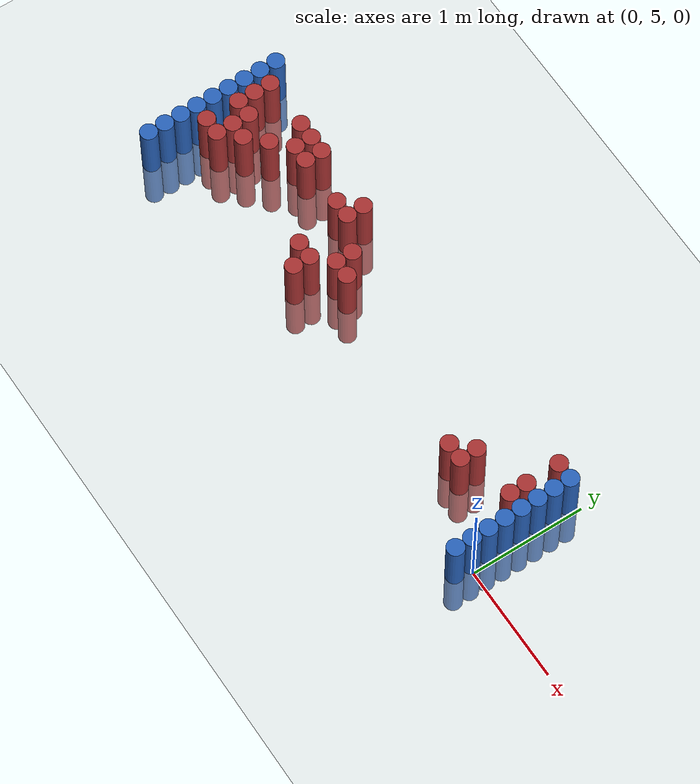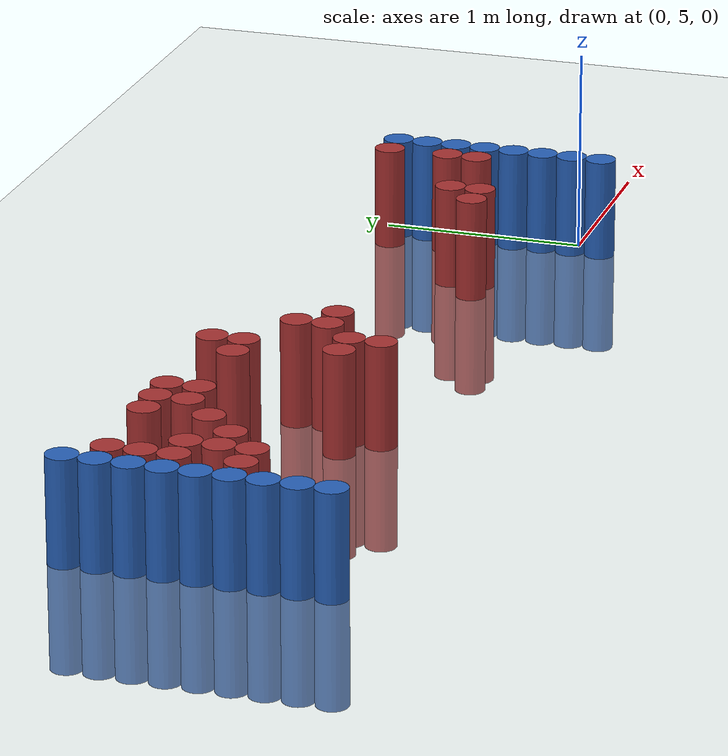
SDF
<sdf version="1.6">
 <world name="world_215">
  <model name="ground_plane">
   <static>1</static>
   <link name="link">
    <collision name="collision">
     <geometry><plane><normal>0 0 1</normal><size>100 100</size></plane></geometry>
     <surface><friction><ode><mu>100</mu><mu2>50</mu2></ode></friction></surface>
    </collision>
    <visual name="visual">
     <cast_shadows>0</cast_shadows>
     <geometry><plane><normal>0 0 1</normal><size>100 100</size></plane></geometry>
     <material>
      <script><uri>file://media/materials/scripts/gazebo.material</uri><name>Gazebo/Grey</name></script>
     </material>
    </visual>
   </link>
  </model>
  <model name="unit_cylinder_92">
   <static>1</static>
   <pose>-0.075000 4.875000 0.000000 0.000000 0.000000 0.000000</pose>
   <link name="link">
    <inertial>
     <mass>1</mass>
     <inertia><ixx>0.145833</ixx><ixy>0</ixy><ixz>0</ixz><iyy>0.145833</iyy><iyz>0</iyz><izz>0.125</izz></inertia>
    </inertial>
    <collision name="collision">
     <geometry><cylinder><radius>0.075000</radius><length>1</length></cylinder></geometry>
    </collision>
    <visual name="visual">
     <geometry><cylinder><radius>0.075000</radius><length>1</length></cylinder></geometry>
     <material>
      <ambient>0.152000 0.379000 0.720000 1</ambient>
      <diffuse>0.152000 0.379000 0.720000 1</diffuse>
     </material>
     <material>
      <script><name>Gazebo/Grey</name><uri>file://media/materials/scripts/gazebo.material</uri></script>
     </material>
    </visual>
   </link>
  </model>
  <model name="unit_cylinder_93">
   <static>1</static>
   <pose>-4.425000 4.875000 0.000000 0.000000 0.000000 0.000000</pose>
   <link name="link">
    <inertial>
     <mass>1</mass>
     <inertia><ixx>0.145833</ixx><ixy>0</ixy><ixz>0</ixz><iyy>0.145833</iyy><iyz>0</iyz><izz>0.125</izz></inertia>
    </inertial>
    <collision name="collision">
     <geometry><cylinder><radius>0.075000</radius><length>1</length></cylinder></geometry>
    </collision>
    <visual name="visual">
     <geometry><cylinder><radius>0.075000</radius><length>1</length></cylinder></geometry>
     <material>
      <ambient>0.152000 0.379000 0.720000 1</ambient>
      <diffuse>0.152000 0.379000 0.720000 1</diffuse>
     </material>
     <material>
      <script><name>Gazebo/Grey</name><uri>file://media/materials/scripts/gazebo.material</uri></script>
     </material>
    </visual>
   </link>
  </model>
  <model name="unit_cylinder_94">
   <static>1</static>
   <pose>-0.075000 5.025000 0.000000 0.000000 0.000000 0.000000</pose>
   <link name="link">
    <inertial>
     <mass>1</mass>
     <inertia><ixx>0.145833</ixx><ixy>0</ixy><ixz>0</ixz><iyy>0.145833</iyy><iyz>0</iyz><izz>0.125</izz></inertia>
    </inertial>
    <collision name="collision">
     <geometry><cylinder><radius>0.075000</radius><length>1</length></cylinder></geometry>
    </collision>
    <visual name="visual">
     <geometry><cylinder><radius>0.075000</radius><length>1</length></cylinder></geometry>
     <material>
      <ambient>0.152000 0.379000 0.720000 1</ambient>
      <diffuse>0.152000 0.379000 0.720000 1</diffuse>
     </material>
     <material>
      <script><name>Gazebo/Grey</name><uri>file://media/materials/scripts/gazebo.material</uri></script>
     </material>
    </visual>
   </link>
  </model>
  <model name="unit_cylinder_95">
   <static>1</static>
   <pose>-4.425000 5.025000 0.000000 0.000000 0.000000 0.000000</pose>
   <link name="link">
    <inertial>
     <mass>1</mass>
     <inertia><ixx>0.145833</ixx><ixy>0</ixy><ixz>0</ixz><iyy>0.145833</iyy><iyz>0</iyz><izz>0.125</izz></inertia>
    </inertial>
    <collision name="collision">
     <geometry><cylinder><radius>0.075000</radius><length>1</length></cylinder></geometry>
    </collision>
    <visual name="visual">
     <geometry><cylinder><radius>0.075000</radius><length>1</length></cylinder></geometry>
     <material>
      <ambient>0.152000 0.379000 0.720000 1</ambient>
      <diffuse>0.152000 0.379000 0.720000 1</diffuse>
     </material>
     <material>
      <script><name>Gazebo/Grey</name><uri>file://media/materials/scripts/gazebo.material</uri></script>
     </material>
    </visual>
   </link>
  </model>
  <model name="unit_cylinder_96">
   <static>1</static>
   <pose>-4.425000 5.175000 0.000000 0.000000 0.000000 0.000000</pose>
   <link name="link">
    <inertial>
     <mass>1</mass>
     <inertia><ixx>0.145833</ixx><ixy>0</ixy><ixz>0</ixz><iyy>0.145833</iyy><iyz>0</iyz><izz>0.125</izz></inertia>
    </inertial>
    <collision name="collision">
     <geometry><cylinder><radius>0.075000</radius><length>1</length></cylinder></geometry>
    </collision>
    <visual name="visual">
     <geometry><cylinder><radius>0.075000</radius><length>1</length></cylinder></geometry>
     <material>
      <ambient>0.152000 0.379000 0.720000 1</ambient>
      <diffuse>0.152000 0.379000 0.720000 1</diffuse>
     </material>
     <material>
      <script><name>Gazebo/Grey</name><uri>file://media/materials/scripts/gazebo.material</uri></script>
     </material>
    </visual>
   </link>
  </model>
  <model name="unit_cylinder_97">
   <static>1</static>
   <pose>-4.425000 5.325000 0.000000 0.000000 0.000000 0.000000</pose>
   <link name="link">
    <inertial>
     <mass>1</mass>
     <inertia><ixx>0.145833</ixx><ixy>0</ixy><ixz>0</ixz><iyy>0.145833</iyy><iyz>0</iyz><izz>0.125</izz></inertia>
    </inertial>
    <collision name="collision">
     <geometry><cylinder><radius>0.075000</radius><length>1</length></cylinder></geometry>
    </collision>
    <visual name="visual">
     <geometry><cylinder><radius>0.075000</radius><length>1</length></cylinder></geometry>
     <material>
      <ambient>0.152000 0.379000 0.720000 1</ambient>
      <diffuse>0.152000 0.379000 0.720000 1</diffuse>
     </material>
     <material>
      <script><name>Gazebo/Grey</name><uri>file://media/materials/scripts/gazebo.material</uri></script>
     </material>
    </visual>
   </link>
  </model>
  <model name="unit_cylinder_98">
   <static>1</static>
   <pose>-4.425000 5.475000 0.000000 0.000000 0.000000 0.000000</pose>
   <link name="link">
    <inertial>
     <mass>1</mass>
     <inertia><ixx>0.145833</ixx><ixy>0</ixy><ixz>0</ixz><iyy>0.145833</iyy><iyz>0</iyz><izz>0.125</izz></inertia>
    </inertial>
    <collision name="collision">
     <geometry><cylinder><radius>0.075000</radius><length>1</length></cylinder></geometry>
    </collision>
    <visual name="visual">
     <geometry><cylinder><radius>0.075000</radius><length>1</length></cylinder></geometry>
     <material>
      <ambient>0.152000 0.379000 0.720000 1</ambient>
      <diffuse>0.152000 0.379000 0.720000 1</diffuse>
     </material>
     <material>
      <script><name>Gazebo/Grey</name><uri>file://media/materials/scripts/gazebo.material</uri></script>
     </material>
    </visual>
   </link>
  </model>
  <model name="unit_cylinder_99">
   <static>1</static>
   <pose>-4.425000 5.625000 0.000000 0.000000 0.000000 0.000000</pose>
   <link name="link">
    <inertial>
     <mass>1</mass>
     <inertia><ixx>0.145833</ixx><ixy>0</ixy><ixz>0</ixz><iyy>0.145833</iyy><iyz>0</iyz><izz>0.125</izz></inertia>
    </inertial>
    <collision name="collision">
     <geometry><cylinder><radius>0.075000</radius><length>1</length></cylinder></geometry>
    </collision>
    <visual name="visual">
     <geometry><cylinder><radius>0.075000</radius><length>1</length></cylinder></geometry>
     <material>
      <ambient>0.152000 0.379000 0.720000 1</ambient>
      <diffuse>0.152000 0.379000 0.720000 1</diffuse>
     </material>
     <material>
      <script><name>Gazebo/Grey</name><uri>file://media/materials/scripts/gazebo.material</uri></script>
     </material>
    </visual>
   </link>
  </model>
  <model name="unit_cylinder_100">
   <static>1</static>
   <pose>-4.425000 5.775000 0.000000 0.000000 0.000000 0.000000</pose>
   <link name="link">
    <inertial>
     <mass>1</mass>
     <inertia><ixx>0.145833</ixx><ixy>0</ixy><ixz>0</ixz><iyy>0.145833</iyy><iyz>0</iyz><izz>0.125</izz></inertia>
    </inertial>
    <collision name="collision">
     <geometry><cylinder><radius>0.075000</radius><length>1</length></cylinder></geometry>
    </collision>
    <visual name="visual">
     <geometry><cylinder><radius>0.075000</radius><length>1</length></cylinder></geometry>
     <material>
      <ambient>0.152000 0.379000 0.720000 1</ambient>
      <diffuse>0.152000 0.379000 0.720000 1</diffuse>
     </material>
     <material>
      <script><name>Gazebo/Grey</name><uri>file://media/materials/scripts/gazebo.material</uri></script>
     </material>
    </visual>
   </link>
  </model>
  <model name="unit_cylinder_101">
   <static>1</static>
   <pose>-4.425000 5.925000 0.000000 0.000000 0.000000 0.000000</pose>
   <link name="link">
    <inertial>
     <mass>1</mass>
     <inertia><ixx>0.145833</ixx><ixy>0</ixy><ixz>0</ixz><iyy>0.145833</iyy><iyz>0</iyz><izz>0.125</izz></inertia>
    </inertial>
    <collision name="collision">
     <geometry><cylinder><radius>0.075000</radius><length>1</length></cylinder></geometry>
    </collision>
    <visual name="visual">
     <geometry><cylinder><radius>0.075000</radius><length>1</length></cylinder></geometry>
     <material>
      <ambient>0.152000 0.379000 0.720000 1</ambient>
      <diffuse>0.152000 0.379000 0.720000 1</diffuse>
     </material>
     <material>
      <script><name>Gazebo/Grey</name><uri>file://media/materials/scripts/gazebo.material</uri></script>
     </material>
    </visual>
   </link>
  </model>
  <model name="unit_cylinder_102">
   <static>1</static>
   <pose>-4.425000 6.075000 0.000000 0.000000 0.000000 0.000000</pose>
   <link name="link">
    <inertial>
     <mass>1</mass>
     <inertia><ixx>0.145833</ixx><ixy>0</ixy><ixz>0</ixz><iyy>0.145833</iyy><iyz>0</iyz><izz>0.125</izz></inertia>
    </inertial>
    <collision name="collision">
     <geometry><cylinder><radius>0.075000</radius><length>1</length></cylinder></geometry>
    </collision>
    <visual name="visual">
     <geometry><cylinder><radius>0.075000</radius><length>1</length></cylinder></geometry>
     <material>
      <ambient>0.152000 0.379000 0.720000 1</ambient>
      <diffuse>0.152000 0.379000 0.720000 1</diffuse>
     </material>
     <material>
      <script><name>Gazebo/Grey</name><uri>file://media/materials/scripts/gazebo.material</uri></script>
     </material>
    </visual>
   </link>
  </model>
  <model name="unit_cylinder_126">
   <static>1</static>
   <pose>-4.275000 5.325000 0.000000 0.000000 0.000000 0.000000</pose>
   <link name="link">
    <inertial>
     <mass>1</mass>
     <inertia><ixx>0.145833</ixx><ixy>0</ixy><ixz>0</ixz><iyy>0.145833</iyy><iyz>0</iyz><izz>0.125</izz></inertia>
    </inertial>
    <collision name="collision">
     <geometry><cylinder><radius>0.075000</radius><length>1</length></cylinder></geometry>
    </collision>
    <visual name="visual">
     <geometry><cylinder><radius>0.075000</radius><length>1</length></cylinder></geometry>
     <material>
      <ambient>0.648000 0.192000 0.192000 1</ambient>
      <diffuse>0.648000 0.192000 0.192000 1</diffuse>
     </material>
     <material>
      <script><name>Gazebo/Grey</name><uri>file://media/materials/scripts/gazebo.material</uri></script>
     </material>
    </visual>
   </link>
  </model>
  <model name="unit_cylinder_127">
   <static>1</static>
   <pose>-4.275000 5.625000 0.000000 0.000000 0.000000 0.000000</pose>
   <link name="link">
    <inertial>
     <mass>1</mass>
     <inertia><ixx>0.145833</ixx><ixy>0</ixy><ixz>0</ixz><iyy>0.145833</iyy><iyz>0</iyz><izz>0.125</izz></inertia>
    </inertial>
    <collision name="collision">
     <geometry><cylinder><radius>0.075000</radius><length>1</length></cylinder></geometry>
    </collision>
    <visual name="visual">
     <geometry><cylinder><radius>0.075000</radius><length>1</length></cylinder></geometry>
     <material>
      <ambient>0.648000 0.192000 0.192000 1</ambient>
      <diffuse>0.648000 0.192000 0.192000 1</diffuse>
     </material>
     <material>
      <script><name>Gazebo/Grey</name><uri>file://media/materials/scripts/gazebo.material</uri></script>
     </material>
    </visual>
   </link>
  </model>
  <model name="unit_cylinder_128">
   <static>1</static>
   <pose>-4.275000 5.775000 0.000000 0.000000 0.000000 0.000000</pose>
   <link name="link">
    <inertial>
     <mass>1</mass>
     <inertia><ixx>0.145833</ixx><ixy>0</ixy><ixz>0</ixz><iyy>0.145833</iyy><iyz>0</iyz><izz>0.125</izz></inertia>
    </inertial>
    <collision name="collision">
     <geometry><cylinder><radius>0.075000</radius><length>1</length></cylinder></geometry>
    </collision>
    <visual name="visual">
     <geometry><cylinder><radius>0.075000</radius><length>1</length></cylinder></geometry>
     <material>
      <ambient>0.648000 0.192000 0.192000 1</ambient>
      <diffuse>0.648000 0.192000 0.192000 1</diffuse>
     </material>
     <material>
      <script><name>Gazebo/Grey</name><uri>file://media/materials/scripts/gazebo.material</uri></script>
     </material>
    </visual>
   </link>
  </model>
  <model name="unit_cylinder_129">
   <static>1</static>
   <pose>-4.275000 5.925000 0.000000 0.000000 0.000000 0.000000</pose>
   <link name="link">
    <inertial>
     <mass>1</mass>
     <inertia><ixx>0.145833</ixx><ixy>0</ixy><ixz>0</ixz><iyy>0.145833</iyy><iyz>0</iyz><izz>0.125</izz></inertia>
    </inertial>
    <collision name="collision">
     <geometry><cylinder><radius>0.075000</radius><length>1</length></cylinder></geometry>
    </collision>
    <visual name="visual">
     <geometry><cylinder><radius>0.075000</radius><length>1</length></cylinder></geometry>
     <material>
      <ambient>0.648000 0.192000 0.192000 1</ambient>
      <diffuse>0.648000 0.192000 0.192000 1</diffuse>
     </material>
     <material>
      <script><name>Gazebo/Grey</name><uri>file://media/materials/scripts/gazebo.material</uri></script>
     </material>
    </visual>
   </link>
  </model>
  <model name="unit_cylinder_139">
   <static>1</static>
   <pose>-4.125000 5.325000 0.000000 0.000000 0.000000 0.000000</pose>
   <link name="link">
    <inertial>
     <mass>1</mass>
     <inertia><ixx>0.145833</ixx><ixy>0</ixy><ixz>0</ixz><iyy>0.145833</iyy><iyz>0</iyz><izz>0.125</izz></inertia>
    </inertial>
    <collision name="collision">
     <geometry><cylinder><radius>0.075000</radius><length>1</length></cylinder></geometry>
    </collision>
    <visual name="visual">
     <geometry><cylinder><radius>0.075000</radius><length>1</length></cylinder></geometry>
     <material>
      <ambient>0.648000 0.192000 0.192000 1</ambient>
      <diffuse>0.648000 0.192000 0.192000 1</diffuse>
     </material>
     <material>
      <script><name>Gazebo/Grey</name><uri>file://media/materials/scripts/gazebo.material</uri></script>
     </material>
    </visual>
   </link>
  </model>
  <model name="unit_cylinder_140">
   <static>1</static>
   <pose>-4.125000 5.475000 0.000000 0.000000 0.000000 0.000000</pose>
   <link name="link">
    <inertial>
     <mass>1</mass>
     <inertia><ixx>0.145833</ixx><ixy>0</ixy><ixz>0</ixz><iyy>0.145833</iyy><iyz>0</iyz><izz>0.125</izz></inertia>
    </inertial>
    <collision name="collision">
     <geometry><cylinder><radius>0.075000</radius><length>1</length></cylinder></geometry>
    </collision>
    <visual name="visual">
     <geometry><cylinder><radius>0.075000</radius><length>1</length></cylinder></geometry>
     <material>
      <ambient>0.648000 0.192000 0.192000 1</ambient>
      <diffuse>0.648000 0.192000 0.192000 1</diffuse>
     </material>
     <material>
      <script><name>Gazebo/Grey</name><uri>file://media/materials/scripts/gazebo.material</uri></script>
     </material>
    </visual>
   </link>
  </model>
  <model name="unit_cylinder_141">
   <static>1</static>
   <pose>-4.125000 5.625000 0.000000 0.000000 0.000000 0.000000</pose>
   <link name="link">
    <inertial>
     <mass>1</mass>
     <inertia><ixx>0.145833</ixx><ixy>0</ixy><ixz>0</ixz><iyy>0.145833</iyy><iyz>0</iyz><izz>0.125</izz></inertia>
    </inertial>
    <collision name="collision">
     <geometry><cylinder><radius>0.075000</radius><length>1</length></cylinder></geometry>
    </collision>
    <visual name="visual">
     <geometry><cylinder><radius>0.075000</radius><length>1</length></cylinder></geometry>
     <material>
      <ambient>0.648000 0.192000 0.192000 1</ambient>
      <diffuse>0.648000 0.192000 0.192000 1</diffuse>
     </material>
     <material>
      <script><name>Gazebo/Grey</name><uri>file://media/materials/scripts/gazebo.material</uri></script>
     </material>
    </visual>
   </link>
  </model>
  <model name="unit_cylinder_142">
   <static>1</static>
   <pose>-3.975000 5.475000 0.000000 0.000000 0.000000 0.000000</pose>
   <link name="link">
    <inertial>
     <mass>1</mass>
     <inertia><ixx>0.145833</ixx><ixy>0</ixy><ixz>0</ixz><iyy>0.145833</iyy><iyz>0</iyz><izz>0.125</izz></inertia>
    </inertial>
    <collision name="collision">
     <geometry><cylinder><radius>0.075000</radius><length>1</length></cylinder></geometry>
    </collision>
    <visual name="visual">
     <geometry><cylinder><radius>0.075000</radius><length>1</length></cylinder></geometry>
     <material>
      <ambient>0.648000 0.192000 0.192000 1</ambient>
      <diffuse>0.648000 0.192000 0.192000 1</diffuse>
     </material>
     <material>
      <script><name>Gazebo/Grey</name><uri>file://media/materials/scripts/gazebo.material</uri></script>
     </material>
    </visual>
   </link>
  </model>
  <model name="unit_cylinder_145">
   <static>1</static>
   <pose>-3.825000 5.625000 0.000000 0.000000 0.000000 0.000000</pose>
   <link name="link">
    <inertial>
     <mass>1</mass>
     <inertia><ixx>0.145833</ixx><ixy>0</ixy><ixz>0</ixz><iyy>0.145833</iyy><iyz>0</iyz><izz>0.125</izz></inertia>
    </inertial>
    <collision name="collision">
     <geometry><cylinder><radius>0.075000</radius><length>1</length></cylinder></geometry>
    </collision>
    <visual name="visual">
     <geometry><cylinder><radius>0.075000</radius><length>1</length></cylinder></geometry>
     <material>
      <ambient>0.648000 0.192000 0.192000 1</ambient>
      <diffuse>0.648000 0.192000 0.192000 1</diffuse>
     </material>
     <material>
      <script><name>Gazebo/Grey</name><uri>file://media/materials/scripts/gazebo.material</uri></script>
     </material>
    </visual>
   </link>
  </model>
  <model name="unit_cylinder_146">
   <static>1</static>
   <pose>-3.825000 5.925000 0.000000 0.000000 0.000000 0.000000</pose>
   <link name="link">
    <inertial>
     <mass>1</mass>
     <inertia><ixx>0.145833</ixx><ixy>0</ixy><ixz>0</ixz><iyy>0.145833</iyy><iyz>0</iyz><izz>0.125</izz></inertia>
    </inertial>
    <collision name="collision">
     <geometry><cylinder><radius>0.075000</radius><length>1</length></cylinder></geometry>
    </collision>
    <visual name="visual">
     <geometry><cylinder><radius>0.075000</radius><length>1</length></cylinder></geometry>
     <material>
      <ambient>0.648000 0.192000 0.192000 1</ambient>
      <diffuse>0.648000 0.192000 0.192000 1</diffuse>
     </material>
     <material>
      <script><name>Gazebo/Grey</name><uri>file://media/materials/scripts/gazebo.material</uri></script>
     </material>
    </visual>
   </link>
  </model>
  <model name="unit_cylinder_152">
   <static>1</static>
   <pose>-3.675000 5.775000 0.000000 0.000000 0.000000 0.000000</pose>
   <link name="link">
    <inertial>
     <mass>1</mass>
     <inertia><ixx>0.145833</ixx><ixy>0</ixy><ixz>0</ixz><iyy>0.145833</iyy><iyz>0</iyz><izz>0.125</izz></inertia>
    </inertial>
    <collision name="collision">
     <geometry><cylinder><radius>0.075000</radius><length>1</length></cylinder></geometry>
    </collision>
    <visual name="visual">
     <geometry><cylinder><radius>0.075000</radius><length>1</length></cylinder></geometry>
     <material>
      <ambient>0.648000 0.192000 0.192000 1</ambient>
      <diffuse>0.648000 0.192000 0.192000 1</diffuse>
     </material>
     <material>
      <script><name>Gazebo/Grey</name><uri>file://media/materials/scripts/gazebo.material</uri></script>
     </material>
    </visual>
   </link>
  </model>
  <model name="unit_cylinder_153">
   <static>1</static>
   <pose>-3.675000 5.925000 0.000000 0.000000 0.000000 0.000000</pose>
   <link name="link">
    <inertial>
     <mass>1</mass>
     <inertia><ixx>0.145833</ixx><ixy>0</ixy><ixz>0</ixz><iyy>0.145833</iyy><iyz>0</iyz><izz>0.125</izz></inertia>
    </inertial>
    <collision name="collision">
     <geometry><cylinder><radius>0.075000</radius><length>1</length></cylinder></geometry>
    </collision>
    <visual name="visual">
     <geometry><cylinder><radius>0.075000</radius><length>1</length></cylinder></geometry>
     <material>
      <ambient>0.648000 0.192000 0.192000 1</ambient>
      <diffuse>0.648000 0.192000 0.192000 1</diffuse>
     </material>
     <material>
      <script><name>Gazebo/Grey</name><uri>file://media/materials/scripts/gazebo.material</uri></script>
     </material>
    </visual>
   </link>
  </model>
  <model name="unit_cylinder_160">
   <static>1</static>
   <pose>-3.525000 5.775000 0.000000 0.000000 0.000000 0.000000</pose>
   <link name="link">
    <inertial>
     <mass>1</mass>
     <inertia><ixx>0.145833</ixx><ixy>0</ixy><ixz>0</ixz><iyy>0.145833</iyy><iyz>0</iyz><izz>0.125</izz></inertia>
    </inertial>
    <collision name="collision">
     <geometry><cylinder><radius>0.075000</radius><length>1</length></cylinder></geometry>
    </collision>
    <visual name="visual">
     <geometry><cylinder><radius>0.075000</radius><length>1</length></cylinder></geometry>
     <material>
      <ambient>0.648000 0.192000 0.192000 1</ambient>
      <diffuse>0.648000 0.192000 0.192000 1</diffuse>
     </material>
     <material>
      <script><name>Gazebo/Grey</name><uri>file://media/materials/scripts/gazebo.material</uri></script>
     </material>
    </visual>
   </link>
  </model>
  <model name="unit_cylinder_161">
   <static>1</static>
   <pose>-3.525000 5.925000 0.000000 0.000000 0.000000 0.000000</pose>
   <link name="link">
    <inertial>
     <mass>1</mass>
     <inertia><ixx>0.145833</ixx><ixy>0</ixy><ixz>0</ixz><iyy>0.145833</iyy><iyz>0</iyz><izz>0.125</izz></inertia>
    </inertial>
    <collision name="collision">
     <geometry><cylinder><radius>0.075000</radius><length>1</length></cylinder></geometry>
    </collision>
    <visual name="visual">
     <geometry><cylinder><radius>0.075000</radius><length>1</length></cylinder></geometry>
     <material>
      <ambient>0.648000 0.192000 0.192000 1</ambient>
      <diffuse>0.648000 0.192000 0.192000 1</diffuse>
     </material>
     <material>
      <script><name>Gazebo/Grey</name><uri>file://media/materials/scripts/gazebo.material</uri></script>
     </material>
    </visual>
   </link>
  </model>
  <model name="unit_cylinder_172">
   <static>1</static>
   <pose>-3.075000 5.775000 0.000000 0.000000 0.000000 0.000000</pose>
   <link name="link">
    <inertial>
     <mass>1</mass>
     <inertia><ixx>0.145833</ixx><ixy>0</ixy><ixz>0</ixz><iyy>0.145833</iyy><iyz>0</iyz><izz>0.125</izz></inertia>
    </inertial>
    <collision name="collision">
     <geometry><cylinder><radius>0.075000</radius><length>1</length></cylinder></geometry>
    </collision>
    <visual name="visual">
     <geometry><cylinder><radius>0.075000</radius><length>1</length></cylinder></geometry>
     <material>
      <ambient>0.648000 0.192000 0.192000 1</ambient>
      <diffuse>0.648000 0.192000 0.192000 1</diffuse>
     </material>
     <material>
      <script><name>Gazebo/Grey</name><uri>file://media/materials/scripts/gazebo.material</uri></script>
     </material>
    </visual>
   </link>
  </model>
  <model name="unit_cylinder_178">
   <static>1</static>
   <pose>-2.925000 5.325000 0.000000 0.000000 0.000000 0.000000</pose>
   <link name="link">
    <inertial>
     <mass>1</mass>
     <inertia><ixx>0.145833</ixx><ixy>0</ixy><ixz>0</ixz><iyy>0.145833</iyy><iyz>0</iyz><izz>0.125</izz></inertia>
    </inertial>
    <collision name="collision">
     <geometry><cylinder><radius>0.075000</radius><length>1</length></cylinder></geometry>
    </collision>
    <visual name="visual">
     <geometry><cylinder><radius>0.075000</radius><length>1</length></cylinder></geometry>
     <material>
      <ambient>0.648000 0.192000 0.192000 1</ambient>
      <diffuse>0.648000 0.192000 0.192000 1</diffuse>
     </material>
     <material>
      <script><name>Gazebo/Grey</name><uri>file://media/materials/scripts/gazebo.material</uri></script>
     </material>
    </visual>
   </link>
  </model>
  <model name="unit_cylinder_179">
   <static>1</static>
   <pose>-2.925000 5.775000 0.000000 0.000000 0.000000 0.000000</pose>
   <link name="link">
    <inertial>
     <mass>1</mass>
     <inertia><ixx>0.145833</ixx><ixy>0</ixy><ixz>0</ixz><iyy>0.145833</iyy><iyz>0</iyz><izz>0.125</izz></inertia>
    </inertial>
    <collision name="collision">
     <geometry><cylinder><radius>0.075000</radius><length>1</length></cylinder></geometry>
    </collision>
    <visual name="visual">
     <geometry><cylinder><radius>0.075000</radius><length>1</length></cylinder></geometry>
     <material>
      <ambient>0.648000 0.192000 0.192000 1</ambient>
      <diffuse>0.648000 0.192000 0.192000 1</diffuse>
     </material>
     <material>
      <script><name>Gazebo/Grey</name><uri>file://media/materials/scripts/gazebo.material</uri></script>
     </material>
    </visual>
   </link>
  </model>
  <model name="unit_cylinder_180">
   <static>1</static>
   <pose>-2.925000 5.925000 0.000000 0.000000 0.000000 0.000000</pose>
   <link name="link">
    <inertial>
     <mass>1</mass>
     <inertia><ixx>0.145833</ixx><ixy>0</ixy><ixz>0</ixz><iyy>0.145833</iyy><iyz>0</iyz><izz>0.125</izz></inertia>
    </inertial>
    <collision name="collision">
     <geometry><cylinder><radius>0.075000</radius><length>1</length></cylinder></geometry>
    </collision>
    <visual name="visual">
     <geometry><cylinder><radius>0.075000</radius><length>1</length></cylinder></geometry>
     <material>
      <ambient>0.648000 0.192000 0.192000 1</ambient>
      <diffuse>0.648000 0.192000 0.192000 1</diffuse>
     </material>
     <material>
      <script><name>Gazebo/Grey</name><uri>file://media/materials/scripts/gazebo.material</uri></script>
     </material>
    </visual>
   </link>
  </model>
  <model name="unit_cylinder_183">
   <static>1</static>
   <pose>-2.775000 5.175000 0.000000 0.000000 0.000000 0.000000</pose>
   <link name="link">
    <inertial>
     <mass>1</mass>
     <inertia><ixx>0.145833</ixx><ixy>0</ixy><ixz>0</ixz><iyy>0.145833</iyy><iyz>0</iyz><izz>0.125</izz></inertia>
    </inertial>
    <collision name="collision">
     <geometry><cylinder><radius>0.075000</radius><length>1</length></cylinder></geometry>
    </collision>
    <visual name="visual">
     <geometry><cylinder><radius>0.075000</radius><length>1</length></cylinder></geometry>
     <material>
      <ambient>0.648000 0.192000 0.192000 1</ambient>
      <diffuse>0.648000 0.192000 0.192000 1</diffuse>
     </material>
     <material>
      <script><name>Gazebo/Grey</name><uri>file://media/materials/scripts/gazebo.material</uri></script>
     </material>
    </visual>
   </link>
  </model>
  <model name="unit_cylinder_184">
   <static>1</static>
   <pose>-2.775000 5.325000 0.000000 0.000000 0.000000 0.000000</pose>
   <link name="link">
    <inertial>
     <mass>1</mass>
     <inertia><ixx>0.145833</ixx><ixy>0</ixy><ixz>0</ixz><iyy>0.145833</iyy><iyz>0</iyz><izz>0.125</izz></inertia>
    </inertial>
    <collision name="collision">
     <geometry><cylinder><radius>0.075000</radius><length>1</length></cylinder></geometry>
    </collision>
    <visual name="visual">
     <geometry><cylinder><radius>0.075000</radius><length>1</length></cylinder></geometry>
     <material>
      <ambient>0.648000 0.192000 0.192000 1</ambient>
      <diffuse>0.648000 0.192000 0.192000 1</diffuse>
     </material>
     <material>
      <script><name>Gazebo/Grey</name><uri>file://media/materials/scripts/gazebo.material</uri></script>
     </material>
    </visual>
   </link>
  </model>
  <model name="unit_cylinder_185">
   <static>1</static>
   <pose>-2.625000 5.475000 0.000000 0.000000 0.000000 0.000000</pose>
   <link name="link">
    <inertial>
     <mass>1</mass>
     <inertia><ixx>0.145833</ixx><ixy>0</ixy><ixz>0</ixz><iyy>0.145833</iyy><iyz>0</iyz><izz>0.125</izz></inertia>
    </inertial>
    <collision name="collision">
     <geometry><cylinder><radius>0.075000</radius><length>1</length></cylinder></geometry>
    </collision>
    <visual name="visual">
     <geometry><cylinder><radius>0.075000</radius><length>1</length></cylinder></geometry>
     <material>
      <ambient>0.648000 0.192000 0.192000 1</ambient>
      <diffuse>0.648000 0.192000 0.192000 1</diffuse>
     </material>
     <material>
      <script><name>Gazebo/Grey</name><uri>file://media/materials/scripts/gazebo.material</uri></script>
     </material>
    </visual>
   </link>
  </model>
  <model name="unit_cylinder_186">
   <static>1</static>
   <pose>-2.625000 5.625000 0.000000 0.000000 0.000000 0.000000</pose>
   <link name="link">
    <inertial>
     <mass>1</mass>
     <inertia><ixx>0.145833</ixx><ixy>0</ixy><ixz>0</ixz><iyy>0.145833</iyy><iyz>0</iyz><izz>0.125</izz></inertia>
    </inertial>
    <collision name="collision">
     <geometry><cylinder><radius>0.075000</radius><length>1</length></cylinder></geometry>
    </collision>
    <visual name="visual">
     <geometry><cylinder><radius>0.075000</radius><length>1</length></cylinder></geometry>
     <material>
      <ambient>0.648000 0.192000 0.192000 1</ambient>
      <diffuse>0.648000 0.192000 0.192000 1</diffuse>
     </material>
     <material>
      <script><name>Gazebo/Grey</name><uri>file://media/materials/scripts/gazebo.material</uri></script>
     </material>
    </visual>
   </link>
  </model>
  <model name="unit_cylinder_189">
   <static>1</static>
   <pose>-2.475000 5.475000 0.000000 0.000000 0.000000 0.000000</pose>
   <link name="link">
    <inertial>
     <mass>1</mass>
     <inertia><ixx>0.145833</ixx><ixy>0</ixy><ixz>0</ixz><iyy>0.145833</iyy><iyz>0</iyz><izz>0.125</izz></inertia>
    </inertial>
    <collision name="collision">
     <geometry><cylinder><radius>0.075000</radius><length>1</length></cylinder></geometry>
    </collision>
    <visual name="visual">
     <geometry><cylinder><radius>0.075000</radius><length>1</length></cylinder></geometry>
     <material>
      <ambient>0.648000 0.192000 0.192000 1</ambient>
      <diffuse>0.648000 0.192000 0.192000 1</diffuse>
     </material>
     <material>
      <script><name>Gazebo/Grey</name><uri>file://media/materials/scripts/gazebo.material</uri></script>
     </material>
    </visual>
   </link>
  </model>
  <model name="unit_cylinder_221">
   <static>1</static>
   <pose>-0.825000 5.325000 0.000000 0.000000 0.000000 0.000000</pose>
   <link name="link">
    <inertial>
     <mass>1</mass>
     <inertia><ixx>0.145833</ixx><ixy>0</ixy><ixz>0</ixz><iyy>0.145833</iyy><iyz>0</iyz><izz>0.125</izz></inertia>
    </inertial>
    <collision name="collision">
     <geometry><cylinder><radius>0.075000</radius><length>1</length></cylinder></geometry>
    </collision>
    <visual name="visual">
     <geometry><cylinder><radius>0.075000</radius><length>1</length></cylinder></geometry>
     <material>
      <ambient>0.648000 0.192000 0.192000 1</ambient>
      <diffuse>0.648000 0.192000 0.192000 1</diffuse>
     </material>
     <material>
      <script><name>Gazebo/Grey</name><uri>file://media/materials/scripts/gazebo.material</uri></script>
     </material>
    </visual>
   </link>
  </model>
  <model name="unit_cylinder_224">
   <static>1</static>
   <pose>-0.675000 5.325000 0.000000 0.000000 0.000000 0.000000</pose>
   <link name="link">
    <inertial>
     <mass>1</mass>
     <inertia><ixx>0.145833</ixx><ixy>0</ixy><ixz>0</ixz><iyy>0.145833</iyy><iyz>0</iyz><izz>0.125</izz></inertia>
    </inertial>
    <collision name="collision">
     <geometry><cylinder><radius>0.075000</radius><length>1</length></cylinder></geometry>
    </collision>
    <visual name="visual">
     <geometry><cylinder><radius>0.075000</radius><length>1</length></cylinder></geometry>
     <material>
      <ambient>0.648000 0.192000 0.192000 1</ambient>
      <diffuse>0.648000 0.192000 0.192000 1</diffuse>
     </material>
     <material>
      <script><name>Gazebo/Grey</name><uri>file://media/materials/scripts/gazebo.material</uri></script>
     </material>
    </visual>
   </link>
  </model>
  <model name="unit_cylinder_225">
   <static>1</static>
   <pose>-0.675000 5.475000 0.000000 0.000000 0.000000 0.000000</pose>
   <link name="link">
    <inertial>
     <mass>1</mass>
     <inertia><ixx>0.145833</ixx><ixy>0</ixy><ixz>0</ixz><iyy>0.145833</iyy><iyz>0</iyz><izz>0.125</izz></inertia>
    </inertial>
    <collision name="collision">
     <geometry><cylinder><radius>0.075000</radius><length>1</length></cylinder></geometry>
    </collision>
    <visual name="visual">
     <geometry><cylinder><radius>0.075000</radius><length>1</length></cylinder></geometry>
     <material>
      <ambient>0.648000 0.192000 0.192000 1</ambient>
      <diffuse>0.648000 0.192000 0.192000 1</diffuse>
     </material>
     <material>
      <script><name>Gazebo/Grey</name><uri>file://media/materials/scripts/gazebo.material</uri></script>
     </material>
    </visual>
   </link>
  </model>
  <model name="unit_cylinder_234">
   <static>1</static>
   <pose>-0.225000 5.475000 0.000000 0.000000 0.000000 0.000000</pose>
   <link name="link">
    <inertial>
     <mass>1</mass>
     <inertia><ixx>0.145833</ixx><ixy>0</ixy><ixz>0</ixz><iyy>0.145833</iyy><iyz>0</iyz><izz>0.125</izz></inertia>
    </inertial>
    <collision name="collision">
     <geometry><cylinder><radius>0.075000</radius><length>1</length></cylinder></geometry>
    </collision>
    <visual name="visual">
     <geometry><cylinder><radius>0.075000</radius><length>1</length></cylinder></geometry>
     <material>
      <ambient>0.648000 0.192000 0.192000 1</ambient>
      <diffuse>0.648000 0.192000 0.192000 1</diffuse>
     </material>
     <material>
      <script><name>Gazebo/Grey</name><uri>file://media/materials/scripts/gazebo.material</uri></script>
     </material>
    </visual>
   </link>
  </model>
  <model name="unit_cylinder_235">
   <static>1</static>
   <pose>-0.225000 5.625000 0.000000 0.000000 0.000000 0.000000</pose>
   <link name="link">
    <inertial>
     <mass>1</mass>
     <inertia><ixx>0.145833</ixx><ixy>0</ixy><ixz>0</ixz><iyy>0.145833</iyy><iyz>0</iyz><izz>0.125</izz></inertia>
    </inertial>
    <collision name="collision">
     <geometry><cylinder><radius>0.075000</radius><length>1</length></cylinder></geometry>
    </collision>
    <visual name="visual">
     <geometry><cylinder><radius>0.075000</radius><length>1</length></cylinder></geometry>
     <material>
      <ambient>0.648000 0.192000 0.192000 1</ambient>
      <diffuse>0.648000 0.192000 0.192000 1</diffuse>
     </material>
     <material>
      <script><name>Gazebo/Grey</name><uri>file://media/materials/scripts/gazebo.material</uri></script>
     </material>
    </visual>
   </link>
  </model>
  <model name="unit_cylinder_236">
   <static>1</static>
   <pose>-0.225000 5.925000 0.000000 0.000000 0.000000 0.000000</pose>
   <link name="link">
    <inertial>
     <mass>1</mass>
     <inertia><ixx>0.145833</ixx><ixy>0</ixy><ixz>0</ixz><iyy>0.145833</iyy><iyz>0</iyz><izz>0.125</izz></inertia>
    </inertial>
    <collision name="collision">
     <geometry><cylinder><radius>0.075000</radius><length>1</length></cylinder></geometry>
    </collision>
    <visual name="visual">
     <geometry><cylinder><radius>0.075000</radius><length>1</length></cylinder></geometry>
     <material>
      <ambient>0.648000 0.192000 0.192000 1</ambient>
      <diffuse>0.648000 0.192000 0.192000 1</diffuse>
     </material>
     <material>
      <script><name>Gazebo/Grey</name><uri>file://media/materials/scripts/gazebo.material</uri></script>
     </material>
    </visual>
   </link>
  </model>
  <model name="unit_cylinder_245">
   <static>1</static>
   <pose>-0.075000 5.175000 0.000000 0.000000 0.000000 0.000000</pose>
   <link name="link">
    <inertial>
     <mass>1</mass>
     <inertia><ixx>0.145833</ixx><ixy>0</ixy><ixz>0</ixz><iyy>0.145833</iyy><iyz>0</iyz><izz>0.125</izz></inertia>
    </inertial>
    <collision name="collision">
     <geometry><cylinder><radius>0.075000</radius><length>1</length></cylinder></geometry>
    </collision>
    <visual name="visual">
     <geometry><cylinder><radius>0.075000</radius><length>1</length></cylinder></geometry>
     <material>
      <ambient>0.152000 0.379000 0.720000 1</ambient>
      <diffuse>0.152000 0.379000 0.720000 1</diffuse>
     </material>
     <material>
      <script><name>Gazebo/Grey</name><uri>file://media/materials/scripts/gazebo.material</uri></script>
     </material>
    </visual>
   </link>
  </model>
  <model name="unit_cylinder_246">
   <static>1</static>
   <pose>-0.075000 5.325000 0.000000 0.000000 0.000000 0.000000</pose>
   <link name="link">
    <inertial>
     <mass>1</mass>
     <inertia><ixx>0.145833</ixx><ixy>0</ixy><ixz>0</ixz><iyy>0.145833</iyy><iyz>0</iyz><izz>0.125</izz></inertia>
    </inertial>
    <collision name="collision">
     <geometry><cylinder><radius>0.075000</radius><length>1</length></cylinder></geometry>
    </collision>
    <visual name="visual">
     <geometry><cylinder><radius>0.075000</radius><length>1</length></cylinder></geometry>
     <material>
      <ambient>0.152000 0.379000 0.720000 1</ambient>
      <diffuse>0.152000 0.379000 0.720000 1</diffuse>
     </material>
     <material>
      <script><name>Gazebo/Grey</name><uri>file://media/materials/scripts/gazebo.material</uri></script>
     </material>
    </visual>
   </link>
  </model>
  <model name="unit_cylinder_247">
   <static>1</static>
   <pose>-0.075000 5.475000 0.000000 0.000000 0.000000 0.000000</pose>
   <link name="link">
    <inertial>
     <mass>1</mass>
     <inertia><ixx>0.145833</ixx><ixy>0</ixy><ixz>0</ixz><iyy>0.145833</iyy><iyz>0</iyz><izz>0.125</izz></inertia>
    </inertial>
    <collision name="collision">
     <geometry><cylinder><radius>0.075000</radius><length>1</length></cylinder></geometry>
    </collision>
    <visual name="visual">
     <geometry><cylinder><radius>0.075000</radius><length>1</length></cylinder></geometry>
     <material>
      <ambient>0.152000 0.379000 0.720000 1</ambient>
      <diffuse>0.152000 0.379000 0.720000 1</diffuse>
     </material>
     <material>
      <script><name>Gazebo/Grey</name><uri>file://media/materials/scripts/gazebo.material</uri></script>
     </material>
    </visual>
   </link>
  </model>
  <model name="unit_cylinder_248">
   <static>1</static>
   <pose>-0.075000 5.625000 0.000000 0.000000 0.000000 0.000000</pose>
   <link name="link">
    <inertial>
     <mass>1</mass>
     <inertia><ixx>0.145833</ixx><ixy>0</ixy><ixz>0</ixz><iyy>0.145833</iyy><iyz>0</iyz><izz>0.125</izz></inertia>
    </inertial>
    <collision name="collision">
     <geometry><cylinder><radius>0.075000</radius><length>1</length></cylinder></geometry>
    </collision>
    <visual name="visual">
     <geometry><cylinder><radius>0.075000</radius><length>1</length></cylinder></geometry>
     <material>
      <ambient>0.152000 0.379000 0.720000 1</ambient>
      <diffuse>0.152000 0.379000 0.720000 1</diffuse>
     </material>
     <material>
      <script><name>Gazebo/Grey</name><uri>file://media/materials/scripts/gazebo.material</uri></script>
     </material>
    </visual>
   </link>
  </model>
  <model name="unit_cylinder_249">
   <static>1</static>
   <pose>-0.075000 5.775000 0.000000 0.000000 0.000000 0.000000</pose>
   <link name="link">
    <inertial>
     <mass>1</mass>
     <inertia><ixx>0.145833</ixx><ixy>0</ixy><ixz>0</ixz><iyy>0.145833</iyy><iyz>0</iyz><izz>0.125</izz></inertia>
    </inertial>
    <collision name="collision">
     <geometry><cylinder><radius>0.075000</radius><length>1</length></cylinder></geometry>
    </collision>
    <visual name="visual">
     <geometry><cylinder><radius>0.075000</radius><length>1</length></cylinder></geometry>
     <material>
      <ambient>0.152000 0.379000 0.720000 1</ambient>
      <diffuse>0.152000 0.379000 0.720000 1</diffuse>
     </material>
     <material>
      <script><name>Gazebo/Grey</name><uri>file://media/materials/scripts/gazebo.material</uri></script>
     </material>
    </visual>
   </link>
  </model>
  <model name="unit_cylinder_250">
   <static>1</static>
   <pose>-0.075000 5.925000 0.000000 0.000000 0.000000 0.000000</pose>
   <link name="link">
    <inertial>
     <mass>1</mass>
     <inertia><ixx>0.145833</ixx><ixy>0</ixy><ixz>0</ixz><iyy>0.145833</iyy><iyz>0</iyz><izz>0.125</izz></inertia>
    </inertial>
    <collision name="collision">
     <geometry><cylinder><radius>0.075000</radius><length>1</length></cylinder></geometry>
    </collision>
    <visual name="visual">
     <geometry><cylinder><radius>0.075000</radius><length>1</length></cylinder></geometry>
     <material>
      <ambient>0.152000 0.379000 0.720000 1</ambient>
      <diffuse>0.152000 0.379000 0.720000 1</diffuse>
     </material>
     <material>
      <script><name>Gazebo/Grey</name><uri>file://media/materials/scripts/gazebo.material</uri></script>
     </material>
    </visual>
   </link>
  </model>
 </world>
</sdf>
